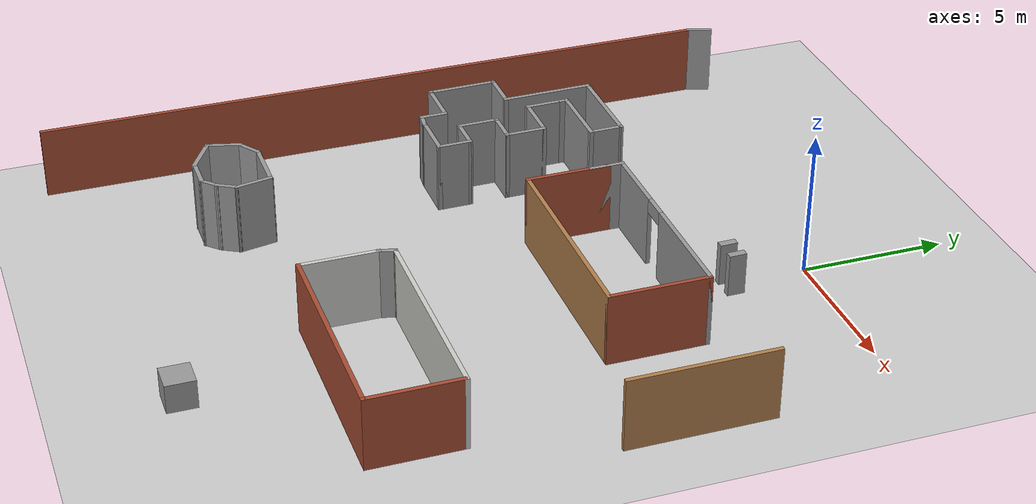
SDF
<sdf version="1.7">
 <world name="default">
  <model name="ground_plane">
   <static>1</static>
   <link name="link">
    <collision name="collision">
     <geometry><plane><normal>0 0 1</normal><size>150 100</size></plane></geometry>
     <surface>
      <contact><collide_bitmask>65535</collide_bitmask></contact>
      <friction><ode><mu>100</mu><mu2>50</mu2></ode></friction>
     </surface>
    </collision>
    <visual name="visual">
     <cast_shadows>0</cast_shadows>
     <geometry><plane><normal>0 0 1</normal><size>150 100</size></plane></geometry>
     <material>
      <script><uri>file://media/materials/scripts/gazebo.material</uri><name>Gazebo/Grey</name></script>
     </material>
    </visual>
   </link>
  </model>
  <model name="unregular_wall">
   <pose>-8.69678 -16.3277 0 0 -0 0</pose>
   <link name="Wall_0">
    <collision name="Wall_0_Collision">
     <geometry><box><size>1.99003 0.15 2.5</size></box></geometry>
     <pose>0 0 1.25 0 -0 0</pose>
    </collision>
    <visual name="Wall_0_Visual">
     <pose>0 0 1.25 0 -0 0</pose>
     <geometry><box><size>1.99003 0.15 2.5</size></box></geometry>
     <material>
      <script><uri>file://media/materials/scripts/gazebo.material</uri><name>Gazebo/Grey</name></script>
      <ambient>1 1 1 1</ambient>
     </material>
     <meta><layer>0</layer></meta>
    </visual>
    <pose>0.359239 0.205461 0 0 -0 -0.005435</pose>
   </link>
   <link name="Wall_1">
    <collision name="Wall_1_Collision">
     <geometry><box><size>1.37286 0.15 2.5</size></box></geometry>
     <pose>0 0 1.25 0 -0 0</pose>
    </collision>
    <visual name="Wall_1_Visual">
     <pose>0 0 1.25 0 -0 0</pose>
     <geometry><box><size>1.37286 0.15 2.5</size></box></geometry>
     <material>
      <script><uri>file://media/materials/scripts/gazebo.material</uri><name>Gazebo/Grey</name></script>
      <ambient>1 1 1 1</ambient>
     </material>
     <meta><layer>0</layer></meta>
    </visual>
    <pose>1.40424 -0.400057 0 0 -0 -1.38159</pose>
   </link>
   <link name="Wall_2">
    <collision name="Wall_2_Collision">
     <geometry><box><size>0.814319 0.15 2.5</size></box></geometry>
     <pose>0 0 1.25 0 -0 0</pose>
    </collision>
    <visual name="Wall_2_Visual">
     <pose>0 0 1.25 0 -0 0</pose>
     <geometry><box><size>0.814319 0.15 2.5</size></box></geometry>
     <material>
      <script><uri>file://media/materials/scripts/gazebo.material</uri><name>Gazebo/Grey</name></script>
      <ambient>1 1 1 1</ambient>
     </material>
     <meta><layer>0</layer></meta>
    </visual>
    <pose>1.34688 -1.29035 0 0 -0 -2.08149</pose>
   </link>
   <link name="Wall_3">
    <collision name="Wall_3_Collision">
     <geometry><box><size>0.75 0.15 2.5</size></box></geometry>
     <pose>0 0 1.25 0 -0 0</pose>
    </collision>
    <visual name="Wall_3_Visual">
     <pose>0 0 1.25 0 -0 0</pose>
     <geometry><box><size>0.75 0.15 2.5</size></box></geometry>
     <material>
      <script><uri>file://media/materials/scripts/gazebo.material</uri><name>Gazebo/Grey</name></script>
      <ambient>1 1 1 1</ambient>
     </material>
     <meta><layer>0</layer></meta>
    </visual>
    <pose>0.972394 -1.79226 0 0 -0 -2.35619</pose>
   </link>
   <link name="Wall_4">
    <collision name="Wall_4_Collision">
     <geometry><box><size>1.25 0.15 2.5</size></box></geometry>
     <pose>0 0 1.25 0 -0 0</pose>
    </collision>
    <visual name="Wall_4_Visual">
     <pose>0 0 1.25 0 -0 0</pose>
     <geometry><box><size>1.25 0.15 2.5</size></box></geometry>
     <material>
      <script><uri>file://media/materials/scripts/gazebo.material</uri><name>Gazebo/Grey</name></script>
      <ambient>1 1 1 1</ambient>
     </material>
     <meta><layer>0</layer></meta>
    </visual>
    <pose>0.210262 -2.0044 0 0 -0 3.14159</pose>
   </link>
   <link name="Wall_5">
    <collision name="Wall_5_Collision">
     <geometry><box><size>1.5 0.15 2.5</size></box></geometry>
     <pose>0 0 1.25 0 -0 0</pose>
    </collision>
    <visual name="Wall_5_Visual">
     <pose>0 0 1.25 0 -0 0</pose>
     <geometry><box><size>1.5 0.15 2.5</size></box></geometry>
     <material>
      <script><uri>file://media/materials/scripts/gazebo.material</uri><name>Gazebo/Grey</name></script>
      <ambient>1 1 1 1</ambient>
     </material>
     <meta><layer>0</layer></meta>
    </visual>
    <pose>-0.924305 -1.6669 0 0 -0 2.61799</pose>
   </link>
   <link name="Wall_6">
    <collision name="Wall_6_Collision">
     <geometry><box><size>1.25 0.15 2.5</size></box></geometry>
     <pose>0 0 1.25 0 -0 0</pose>
    </collision>
    <visual name="Wall_6_Visual">
     <pose>0 0 1.25 0 -0 0</pose>
     <geometry><box><size>1.25 0.15 2.5</size></box></geometry>
     <material>
      <script><uri>file://media/materials/scripts/gazebo.material</uri><name>Gazebo/Grey</name></script>
      <ambient>1 1 1 1</ambient>
     </material>
     <meta><layer>0</layer></meta>
    </visual>
    <pose>-1.36652 -0.798136 0 0 -0 1.309</pose>
   </link>
   <link name="Wall_7">
    <collision name="Wall_7_Collision">
     <geometry><box><size>0.969686 0.15 2.5</size></box></geometry>
     <pose>0 0 1.25 0 -0 0</pose>
    </collision>
    <visual name="Wall_7_Visual">
     <pose>0 0 1.25 0 -0 0</pose>
     <geometry><box><size>0.969686 0.15 2.5</size></box></geometry>
     <material>
      <script><uri>file://media/materials/scripts/gazebo.material</uri><name>Gazebo/Grey</name></script>
      <ambient>1 1 1 1</ambient>
     </material>
     <meta><layer>0</layer></meta>
    </visual>
    <pose>-0.887466 -0.033208 0 0 -0 0.606679</pose>
   </link>
   <static>1</static>
  </model>
  <model name="mountan_like">
   <pose>-9.16752 -7.04341 -1e-06 0.014915 -0.000101 1.5834</pose>
   <link name="Wall_0">
    <collision name="Wall_0_Collision">
     <geometry><box><size>1.75 0.15 2.5</size></box></geometry>
     <pose>0 0 1.25 0 -0 0</pose>
    </collision>
    <visual name="Wall_0_Visual">
     <pose>0 0 1.25 0 -0 0</pose>
     <geometry><box><size>1.75 0.15 2.5</size></box></geometry>
     <material>
      <script><uri>file://media/materials/scripts/gazebo.material</uri><name>Gazebo/Grey</name></script>
      <ambient>1 1 1 1</ambient>
     </material>
     <meta><layer>0</layer></meta>
    </visual>
    <pose>-3.17145 -0.675 0 0 -0 -1.5708</pose>
   </link>
   <link name="Wall_1">
    <collision name="Wall_1_Collision">
     <geometry><box><size>1.25 0.15 2.5</size></box></geometry>
     <pose>0 0 1.25 0 -0 0</pose>
    </collision>
    <visual name="Wall_1_Visual">
     <pose>0 0 1.25 0 -0 0</pose>
     <geometry><box><size>1.25 0.15 2.5</size></box></geometry>
     <material>
      <script><uri>file://media/materials/scripts/gazebo.material</uri><name>Gazebo/Grey</name></script>
      <ambient>1 1 1 1</ambient>
     </material>
     <meta><layer>0</layer></meta>
    </visual>
    <pose>-2.62146 -1.475 0 0 -0 0</pose>
   </link>
   <link name="Wall_10">
    <collision name="Wall_10_Collision">
     <geometry><box><size>1.25 0.15 2.5</size></box></geometry>
     <pose>0 0 1.25 0 -0 0</pose>
    </collision>
    <visual name="Wall_10_Visual">
     <pose>0 0 1.25 0 -0 0</pose>
     <geometry><box><size>1.25 0.15 2.5</size></box></geometry>
     <material>
      <script><uri>file://media/materials/scripts/gazebo.material</uri><name>Gazebo/Grey</name></script>
      <ambient>1 1 1 1</ambient>
     </material>
     <meta><layer>0</layer></meta>
    </visual>
    <pose>2.62854 -2.225 0 0 -0 0</pose>
   </link>
   <link name="Wall_11">
    <collision name="Wall_11_Collision">
     <geometry><box><size>3.25 0.15 2.5</size></box></geometry>
     <pose>0 0 1.25 0 -0 0</pose>
    </collision>
    <visual name="Wall_11_Visual">
     <pose>0 0 1.25 0 -0 0</pose>
     <geometry><box><size>3.25 0.15 2.5</size></box></geometry>
     <material>
      <script><uri>file://media/materials/scripts/gazebo.material</uri><name>Gazebo/Grey</name></script>
      <ambient>1 1 1 1</ambient>
     </material>
     <meta><layer>0</layer></meta>
    </visual>
    <pose>3.17855 -0.675 0 0 -0 1.5708</pose>
   </link>
   <link name="Wall_12">
    <collision name="Wall_12_Collision">
     <geometry><box><size>3.25 0.15 2.5</size></box></geometry>
     <pose>0 0 1.25 0 -0 0</pose>
    </collision>
    <visual name="Wall_12_Visual">
     <pose>0 0 1.25 0 -0 0</pose>
     <geometry><box><size>3.25 0.15 2.5</size></box></geometry>
     <material>
      <script><uri>file://media/materials/scripts/gazebo.material</uri><name>Gazebo/Grey</name></script>
      <ambient>1 1 1 1</ambient>
     </material>
     <meta><layer>0</layer></meta>
    </visual>
    <pose>1.62854 0.875 0 0 -0 3.14159</pose>
   </link>
   <link name="Wall_15">
    <collision name="Wall_15_Collision">
     <geometry><box><size>1.5 0.15 2.5</size></box></geometry>
     <pose>0 0 1.25 0 -0 0</pose>
    </collision>
    <visual name="Wall_15_Visual">
     <pose>0 0 1.25 0 -0 0</pose>
     <geometry><box><size>1.5 0.15 2.5</size></box></geometry>
     <material>
      <script><uri>file://media/materials/scripts/gazebo.material</uri><name>Gazebo/Grey</name></script>
      <ambient>1 1 1 1</ambient>
     </material>
     <meta><layer>0</layer></meta>
    </visual>
    <pose>0.078545 1.55 0 0 -0 1.5708</pose>
   </link>
   <link name="Wall_16">
    <collision name="Wall_16_Collision">
     <geometry><box><size>2.5 0.15 2.5</size></box></geometry>
     <pose>0 0 1.25 0 -0 0</pose>
    </collision>
    <visual name="Wall_16_Visual">
     <pose>0 0 1.25 0 -0 0</pose>
     <geometry><box><size>2.5 0.15 2.5</size></box></geometry>
     <material>
      <script><uri>file://media/materials/scripts/gazebo.material</uri><name>Gazebo/Grey</name></script>
      <ambient>1 1 1 1</ambient>
     </material>
     <meta><layer>0</layer></meta>
    </visual>
    <pose>-1.09645 2.225 0 0 -0 3.14159</pose>
   </link>
   <link name="Wall_17">
    <collision name="Wall_17_Collision">
     <geometry><box><size>1.75 0.15 2.5</size></box></geometry>
     <pose>0 0 1.25 0 -0 0</pose>
    </collision>
    <visual name="Wall_17_Visual">
     <pose>0 0 1.25 0 -0 0</pose>
     <geometry><box><size>1.75 0.15 2.5</size></box></geometry>
     <material>
      <script><uri>file://media/materials/scripts/gazebo.material</uri><name>Gazebo/Grey</name></script>
      <ambient>1 1 1 1</ambient>
     </material>
     <meta><layer>0</layer></meta>
    </visual>
    <pose>-2.27146 1.425 0 0 -0 -1.5708</pose>
   </link>
   <link name="Wall_18">
    <collision name="Wall_18_Collision">
     <geometry><box><size>1 0.15 2.5</size></box></geometry>
     <pose>0 0 1.25 0 -0 0</pose>
    </collision>
    <visual name="Wall_18_Visual">
     <pose>0 0 1.25 0 -0 0</pose>
     <geometry><box><size>1 0.15 2.5</size></box></geometry>
     <material>
      <script><uri>file://media/materials/scripts/gazebo.material</uri><name>Gazebo/Grey</name></script>
      <ambient>1 1 1 1</ambient>
     </material>
     <meta><layer>0</layer></meta>
    </visual>
    <pose>-2.69645 0.625 0 0 -0 3.14159</pose>
   </link>
   <link name="Wall_2">
    <collision name="Wall_2_Collision">
     <geometry><box><size>1.25 0.15 2.5</size></box></geometry>
     <pose>0 0 1.25 0 -0 0</pose>
    </collision>
    <visual name="Wall_2_Visual">
     <pose>0 0 1.25 0 -0 0</pose>
     <geometry><box><size>1.25 0.15 2.5</size></box></geometry>
     <material>
      <script><uri>file://media/materials/scripts/gazebo.material</uri><name>Gazebo/Grey</name></script>
      <ambient>1 1 1 1</ambient>
     </material>
     <meta><layer>0</layer></meta>
    </visual>
    <pose>-2.07145 -0.925 0 0 -0 1.5708</pose>
   </link>
   <link name="Wall_20">
    <collision name="Wall_20_Collision">
     <geometry><box><size>0.652494 0.15 2.5</size></box></geometry>
     <pose>0 0 1.25 0 -0 0</pose>
    </collision>
    <visual name="Wall_20_Visual">
     <pose>0 0 1.25 0 -0 0</pose>
     <geometry><box><size>0.652494 0.15 2.5</size></box></geometry>
     <material>
      <script><uri>file://media/materials/scripts/gazebo.material</uri><name>Gazebo/Grey</name></script>
      <ambient>1 1 1 1</ambient>
     </material>
     <meta><layer>0</layer></meta>
    </visual>
    <pose>-3.14646 0.375 0 0 -0 1.47113</pose>
   </link>
   <link name="Wall_3">
    <collision name="Wall_3_Collision">
     <geometry><box><size>1.5 0.15 2.5</size></box></geometry>
     <pose>0 0 1.25 0 -0 0</pose>
    </collision>
    <visual name="Wall_3_Visual">
     <pose>0 0 1.25 0 -0 0</pose>
     <geometry><box><size>1.5 0.15 2.5</size></box></geometry>
     <material>
      <script><uri>file://media/materials/scripts/gazebo.material</uri><name>Gazebo/Grey</name></script>
      <ambient>1 1 1 1</ambient>
     </material>
     <meta><layer>0</layer></meta>
    </visual>
    <pose>-1.39646 -0.375 0 0 -0 0</pose>
   </link>
   <link name="Wall_4">
    <collision name="Wall_4_Collision">
     <geometry><box><size>1.25 0.15 2.5</size></box></geometry>
     <pose>0 0 1.25 0 -0 0</pose>
    </collision>
    <visual name="Wall_4_Visual">
     <pose>0 0 1.25 0 -0 0</pose>
     <geometry><box><size>1.25 0.15 2.5</size></box></geometry>
     <material>
      <script><uri>file://media/materials/scripts/gazebo.material</uri><name>Gazebo/Grey</name></script>
      <ambient>1 1 1 1</ambient>
     </material>
     <meta><layer>0</layer></meta>
    </visual>
    <pose>-0.721455 -0.925 0 0 -0 -1.5708</pose>
   </link>
   <link name="Wall_5">
    <collision name="Wall_5_Collision">
     <geometry><box><size>1.5 0.15 2.5</size></box></geometry>
     <pose>0 0 1.25 0 -0 0</pose>
    </collision>
    <visual name="Wall_5_Visual">
     <pose>0 0 1.25 0 -0 0</pose>
     <geometry><box><size>1.5 0.15 2.5</size></box></geometry>
     <material>
      <script><uri>file://media/materials/scripts/gazebo.material</uri><name>Gazebo/Grey</name></script>
      <ambient>1 1 1 1</ambient>
     </material>
     <meta><layer>0</layer></meta>
    </visual>
    <pose>-0.046455 -1.475 0 0 -0 0</pose>
   </link>
   <link name="Wall_6">
    <collision name="Wall_6_Collision">
     <geometry><box><size>1.75 0.15 2.5</size></box></geometry>
     <pose>0 0 1.25 0 -0 0</pose>
    </collision>
    <visual name="Wall_6_Visual">
     <pose>0 0 1.25 0 -0 0</pose>
     <geometry><box><size>1.75 0.15 2.5</size></box></geometry>
     <material>
      <script><uri>file://media/materials/scripts/gazebo.material</uri><name>Gazebo/Grey</name></script>
      <ambient>1 1 1 1</ambient>
     </material>
     <meta><layer>0</layer></meta>
    </visual>
    <pose>0.628545 -0.675 0 0 -0 1.5708</pose>
   </link>
   <link name="Wall_7">
    <collision name="Wall_7_Collision">
     <geometry><box><size>1.25 0.15 2.5</size></box></geometry>
     <pose>0 0 1.25 0 -0 0</pose>
    </collision>
    <visual name="Wall_7_Visual">
     <pose>0 0 1.25 0 -0 0</pose>
     <geometry><box><size>1.25 0.15 2.5</size></box></geometry>
     <material>
      <script><uri>file://media/materials/scripts/gazebo.material</uri><name>Gazebo/Grey</name></script>
      <ambient>1 1 1 1</ambient>
     </material>
     <meta><layer>0</layer></meta>
    </visual>
    <pose>1.17854 0.125 0 0 -0 0</pose>
   </link>
   <link name="Wall_8">
    <collision name="Wall_8_Collision">
     <geometry><box><size>0.5 0.15 2.5</size></box></geometry>
     <pose>0 0 1.25 0 -0 0</pose>
    </collision>
    <visual name="Wall_8_Visual">
     <pose>0 0 1.25 0 -0 0</pose>
     <geometry><box><size>0.5 0.15 2.5</size></box></geometry>
     <material>
      <script><uri>file://media/materials/scripts/gazebo.material</uri><name>Gazebo/Grey</name></script>
      <ambient>1 1 1 1</ambient>
     </material>
     <meta><layer>0</layer></meta>
    </visual>
    <pose>1.90355 0.125 0 0 -0 0</pose>
   </link>
   <link name="Wall_9">
    <collision name="Wall_9_Collision">
     <geometry><box><size>2.5 0.15 2.5</size></box></geometry>
     <pose>0 0 1.25 0 -0 0</pose>
    </collision>
    <visual name="Wall_9_Visual">
     <pose>0 0 1.25 0 -0 0</pose>
     <geometry><box><size>2.5 0.15 2.5</size></box></geometry>
     <material>
      <script><uri>file://media/materials/scripts/gazebo.material</uri><name>Gazebo/Grey</name></script>
      <ambient>1 1 1 1</ambient>
     </material>
     <meta><layer>0</layer></meta>
    </visual>
    <pose>2.07855 -1.05 0 0 -0 -1.5708</pose>
   </link>
   <static>1</static>
  </model>
  <model name="unit_box">
   <pose>0.471192 -21 0.499995 0 1e-05 0</pose>
   <link name="link">
    <inertial>
     <mass>1</mass>
     <inertia>
      <ixx>0.166667</ixx>
      <ixy>0</ixy>
      <ixz>0</ixz>
      <iyy>0.166667</iyy>
      <iyz>0</iyz>
      <izz>0.166667</izz>
     </inertia>
    </inertial>
    <collision name="collision"><geometry><box><size>1 1 1</size></box></geometry></collision>
    <visual name="visual">
     <geometry><box><size>1 1 1</size></box></geometry>
     <material>
      <script><name>Gazebo/Grey</name><uri>file://media/materials/scripts/gazebo.material</uri></script>
     </material>
    </visual>
   </link>
  </model>
  <model name="narrowgap">
   <link name="Wall_6">
    <pose>1.3 0.7 0.75 0 -0 1.57</pose>
    <inertial>
     <mass>9.375</mass>
     <inertia>
      <ixx>4.90039</ixx>
      <ixy>0</ixy>
      <ixz>0</ixz>
      <iyy>4.93164</iyy>
      <iyz>0</iyz>
      <izz>0.0664062</izz>
     </inertia>
    </inertial>
    <visual name="Wall_6_Visual">
     <geometry><box><size>0.25 0.6 1.5</size></box></geometry>
     <material>
      <script><uri>file://media/materials/scripts/gazebo.material</uri><name>Gazebo/Grey</name></script>
      <ambient>1 1 1 1</ambient>
      <shader type="pixel"><normal_map>__default__</normal_map></shader>
      <diffuse>0.7 0.7 0.7 1</diffuse>
      <specular>0.01 0.01 0.01 1</specular>
      <emissive>0 0 0 1</emissive>
     </material>
     <meta><layer>0</layer></meta>
    </visual>
    <collision name="Wall_6_Collision">
     <geometry><box><size>0.25 0.6 1.5</size></box></geometry>
     <surface>
      <friction>
       <ode><mu>1</mu><mu2>1</mu2><fdir1>0 0 0</fdir1><slip1>0</slip1><slip2>0</slip2></ode>
       <torsional>
        <coefficient>1</coefficient>
        <patch_radius>0</patch_radius>
        <surface_radius>0</surface_radius>
        <use_patch_radius>1</use_patch_radius>
        <ode><slip>0</slip></ode>
       </torsional>
      </friction>
      <bounce><restitution_coefficient>0</restitution_coefficient><threshold>1e+06</threshold></bounce>
      <contact>
       <collide_without_contact>0</collide_without_contact>
       <collide_without_contact_bitmask>1</collide_without_contact_bitmask>
       <collide_bitmask>1</collide_bitmask>
       <ode>
        <soft_cfm>0</soft_cfm>
        <soft_erp>0.2</soft_erp>
        <kp>1e+13</kp>
        <kd>1</kd>
        <max_vel>0.01</max_vel>
        <min_depth>0</min_depth>
       </ode>
       <bullet>
        <split_impulse>1</split_impulse>
        <split_impulse_penetration_threshold>-0.01</split_impulse_penetration_threshold>
        <soft_cfm>0</soft_cfm>
        <soft_erp>0.2</soft_erp>
        <kp>1e+13</kp>
        <kd>1</kd>
       </bullet>
      </contact>
     </surface>
    </collision>
   </link>
   <link name="Wall_7">
    <pose>1.3 0 0.75 0 -0 1.57</pose>
    <inertial>
     <mass>9.375</mass>
     <inertia>
      <ixx>4.90039</ixx>
      <ixy>0</ixy>
      <ixz>0</ixz>
      <iyy>4.93164</iyy>
      <iyz>0</iyz>
      <izz>0.0664062</izz>
     </inertia>
    </inertial>
    <visual name="Wall_7_Visual">
     <geometry><box><size>0.25 0.6 1.5</size></box></geometry>
     <material>
      <script><uri>file://media/materials/scripts/gazebo.material</uri><name>Gazebo/Grey</name></script>
      <ambient>1 1 1 1</ambient>
      <shader type="pixel"><normal_map>__default__</normal_map></shader>
      <diffuse>0.7 0.7 0.7 1</diffuse>
      <specular>0.01 0.01 0.01 1</specular>
      <emissive>0 0 0 1</emissive>
     </material>
     <meta><layer>0</layer></meta>
    </visual>
    <collision name="Wall_7_Collision">
     <geometry><box><size>0.25 0.6 1.5</size></box></geometry>
     <surface>
      <friction>
       <ode><mu>1</mu><mu2>1</mu2><fdir1>0 0 0</fdir1><slip1>0</slip1><slip2>0</slip2></ode>
       <torsional>
        <coefficient>1</coefficient>
        <patch_radius>0</patch_radius>
        <surface_radius>0</surface_radius>
        <use_patch_radius>1</use_patch_radius>
        <ode><slip>0</slip></ode>
       </torsional>
      </friction>
      <bounce><restitution_coefficient>0</restitution_coefficient><threshold>1e+06</threshold></bounce>
      <contact>
       <collide_without_contact>0</collide_without_contact>
       <collide_without_contact_bitmask>1</collide_without_contact_bitmask>
       <collide_bitmask>1</collide_bitmask>
       <ode>
        <soft_cfm>0</soft_cfm>
        <soft_erp>0.2</soft_erp>
        <kp>1e+13</kp>
        <kd>1</kd>
        <max_vel>0.01</max_vel>
        <min_depth>0</min_depth>
       </ode>
       <bullet>
        <split_impulse>1</split_impulse>
        <split_impulse_penetration_threshold>-0.01</split_impulse_penetration_threshold>
        <soft_cfm>0</soft_cfm>
        <soft_erp>0.2</soft_erp>
        <kp>1e+13</kp>
        <kd>1</kd>
       </bullet>
      </contact>
     </surface>
    </collision>
   </link>
   <static>1</static>
   <pose>0.475672 -4.02864 0 0 -0 1.58428</pose>
  </model>
  <model name="slam_world_test.world">
   <link name="Wall_16">
    <pose>-9.1174 -4.89748 0 0 0 -1.5708</pose>
    <visual name="Wall_16_Visual">
     <pose>0 0 1.25 0 -0 0</pose>
     <geometry><box><size>2.75 0.15 2.5</size></box></geometry>
     <material>
      <script><uri>file://media/materials/scripts/gazebo.material</uri><name>Gazebo/CeilingTiled</name></script>
      <ambient>1 1 1 1</ambient>
      <shader type="pixel"/>
     </material>
     <meta><layer>0</layer></meta>
    </visual>
    <collision name="Wall_16_Collision">
     <pose>0 0 1.25 0 -0 0</pose>
     <geometry><box><size>2.75 0.15 2.5</size></box></geometry>
     <surface>
      <friction>
       <ode><mu>1</mu><mu2>1</mu2><fdir1>0 0 0</fdir1><slip1>0</slip1><slip2>0</slip2></ode>
       <torsional>
        <coefficient>1</coefficient>
        <patch_radius>0</patch_radius>
        <surface_radius>0</surface_radius>
        <use_patch_radius>1</use_patch_radius>
        <ode><slip>0</slip></ode>
       </torsional>
      </friction>
      <bounce><restitution_coefficient>0</restitution_coefficient><threshold>1e+06</threshold></bounce>
      <contact>
       <collide_without_contact>0</collide_without_contact>
       <collide_without_contact_bitmask>1</collide_without_contact_bitmask>
       <collide_bitmask>1</collide_bitmask>
       <ode>
        <soft_cfm>0</soft_cfm>
        <soft_erp>0.2</soft_erp>
        <kp>1e+13</kp>
        <kd>1</kd>
        <max_vel>0.01</max_vel>
        <min_depth>0</min_depth>
       </ode>
       <bullet>
        <split_impulse>1</split_impulse>
        <split_impulse_penetration_threshold>-0.01</split_impulse_penetration_threshold>
        <soft_cfm>0</soft_cfm>
        <soft_erp>0.2</soft_erp>
        <kp>1e+13</kp>
        <kd>1</kd>
       </bullet>
      </contact>
     </surface>
    </collision>
   </link>
   <link name="Wall_17">
    <pose>-5.4424 -6.19749 0 0 -0 0</pose>
    <visual name="Wall_17_Visual">
     <pose>0 0 1.25 0 -0 0</pose>
     <geometry><box><size>7.5 0.15 2.5</size></box></geometry>
     <material>
      <script><uri>file://media/materials/scripts/gazebo.material</uri><name>Gazebo/Bricks</name></script>
      <ambient>1 1 1 1</ambient>
      <shader type="pixel"/>
     </material>
     <meta><layer>0</layer></meta>
    </visual>
    <collision name="Wall_17_Collision">
     <pose>0 0 1.25 0 -0 0</pose>
     <geometry><box><size>7.5 0.15 2.5</size></box></geometry>
     <surface>
      <friction>
       <ode><mu>1</mu><mu2>1</mu2><fdir1>0 0 0</fdir1><slip1>0</slip1><slip2>0</slip2></ode>
       <torsional>
        <coefficient>1</coefficient>
        <patch_radius>0</patch_radius>
        <surface_radius>0</surface_radius>
        <use_patch_radius>1</use_patch_radius>
        <ode><slip>0</slip></ode>
       </torsional>
      </friction>
      <bounce><restitution_coefficient>0</restitution_coefficient><threshold>1e+06</threshold></bounce>
      <contact>
       <collide_without_contact>0</collide_without_contact>
       <collide_without_contact_bitmask>1</collide_without_contact_bitmask>
       <collide_bitmask>1</collide_bitmask>
       <ode>
        <soft_cfm>0</soft_cfm>
        <soft_erp>0.2</soft_erp>
        <kp>1e+13</kp>
        <kd>1</kd>
        <max_vel>0.01</max_vel>
        <min_depth>0</min_depth>
       </ode>
       <bullet>
        <split_impulse>1</split_impulse>
        <split_impulse_penetration_threshold>-0.01</split_impulse_penetration_threshold>
        <soft_cfm>0</soft_cfm>
        <soft_erp>0.2</soft_erp>
        <kp>1e+13</kp>
        <kd>1</kd>
       </bullet>
      </contact>
     </surface>
    </collision>
   </link>
   <link name="Wall_18">
    <pose>-1.7674 -4.64748 0 0 -0 1.5708</pose>
    <visual name="Wall_18_Visual">
     <pose>0 0 1.25 0 -0 0</pose>
     <geometry><box><size>3.25 0.15 2.5</size></box></geometry>
     <material>
      <script><uri>file://media/materials/scripts/gazebo.material</uri><name>Gazebo/Bricks</name></script>
      <ambient>1 1 1 1</ambient>
      <shader type="pixel"/>
     </material>
     <meta><layer>0</layer></meta>
    </visual>
    <collision name="Wall_18_Collision">
     <pose>0 0 1.25 0 -0 0</pose>
     <geometry><box><size>3.25 0.15 2.5</size></box></geometry>
     <surface>
      <friction>
       <ode><mu>1</mu><mu2>1</mu2><fdir1>0 0 0</fdir1><slip1>0</slip1><slip2>0</slip2></ode>
       <torsional>
        <coefficient>1</coefficient>
        <patch_radius>0</patch_radius>
        <surface_radius>0</surface_radius>
        <use_patch_radius>1</use_patch_radius>
        <ode><slip>0</slip></ode>
       </torsional>
      </friction>
      <bounce><restitution_coefficient>0</restitution_coefficient><threshold>1e+06</threshold></bounce>
      <contact>
       <collide_without_contact>0</collide_without_contact>
       <collide_without_contact_bitmask>1</collide_without_contact_bitmask>
       <collide_bitmask>1</collide_bitmask>
       <ode>
        <soft_cfm>0</soft_cfm>
        <soft_erp>0.2</soft_erp>
        <kp>1e+13</kp>
        <kd>1</kd>
        <max_vel>0.01</max_vel>
        <min_depth>0</min_depth>
       </ode>
       <bullet>
        <split_impulse>1</split_impulse>
        <split_impulse_penetration_threshold>-0.01</split_impulse_penetration_threshold>
        <soft_cfm>0</soft_cfm>
        <soft_erp>0.2</soft_erp>
        <kp>1e+13</kp>
        <kd>1</kd>
       </bullet>
      </contact>
     </surface>
    </collision>
   </link>
   <link name="Wall_19">
    <pose>-5.3174 -3.09749 0 0 -0 3.14159</pose>
    <visual name="Wall_19_Visual">
     <pose>0 0 1.25 0 -0 0</pose>
     <geometry><box><size>7.25 0.15 2.5</size></box></geometry>
     <material>
      <script><uri>file://media/materials/scripts/gazebo.material</uri><name>Gazebo/CeilingTiled</name></script>
      <ambient>1 1 1 1</ambient>
      <shader type="pixel"/>
     </material>
     <meta><layer>0</layer></meta>
    </visual>
    <collision name="Wall_19_Collision">
     <pose>0 0 1.25 0 -0 0</pose>
     <geometry><box><size>7.25 0.15 2.5</size></box></geometry>
     <surface>
      <friction>
       <ode><mu>1</mu><mu2>1</mu2><fdir1>0 0 0</fdir1><slip1>0</slip1><slip2>0</slip2></ode>
       <torsional>
        <coefficient>1</coefficient>
        <patch_radius>0</patch_radius>
        <surface_radius>0</surface_radius>
        <use_patch_radius>1</use_patch_radius>
        <ode><slip>0</slip></ode>
       </torsional>
      </friction>
      <bounce><restitution_coefficient>0</restitution_coefficient><threshold>1e+06</threshold></bounce>
      <contact>
       <collide_without_contact>0</collide_without_contact>
       <collide_without_contact_bitmask>1</collide_without_contact_bitmask>
       <collide_bitmask>1</collide_bitmask>
       <ode>
        <soft_cfm>0</soft_cfm>
        <soft_erp>0.2</soft_erp>
        <kp>1e+13</kp>
        <kd>1</kd>
        <max_vel>0.01</max_vel>
        <min_depth>0</min_depth>
       </ode>
       <bullet>
        <split_impulse>1</split_impulse>
        <split_impulse_penetration_threshold>-0.01</split_impulse_penetration_threshold>
        <soft_cfm>0</soft_cfm>
        <soft_erp>0.2</soft_erp>
        <kp>1e+13</kp>
        <kd>1</kd>
       </bullet>
      </contact>
     </surface>
    </collision>
   </link>
   <link name="Wall_20">
    <pose>-8.9174 -3.09749 0 0 -0 3.14159</pose>
    <visual name="Wall_20_Visual">
     <pose>0 0 1.25 0 -0 0</pose>
     <geometry><box><size>0.25 0.15 2.5</size></box></geometry>
     <material>
      <script><uri>file://media/materials/scripts/gazebo.material</uri><name>Gazebo/Grey</name></script>
      <ambient>1 1 1 1</ambient>
      <shader type="pixel"/>
     </material>
     <meta><layer>0</layer></meta>
    </visual>
    <collision name="Wall_20_Collision">
     <pose>0 0 1.25 0 -0 0</pose>
     <geometry><box><size>0.25 0.15 2.5</size></box></geometry>
     <surface>
      <friction>
       <ode><mu>1</mu><mu2>1</mu2><fdir1>0 0 0</fdir1><slip1>0</slip1><slip2>0</slip2></ode>
       <torsional>
        <coefficient>1</coefficient>
        <patch_radius>0</patch_radius>
        <surface_radius>0</surface_radius>
        <use_patch_radius>1</use_patch_radius>
        <ode><slip>0</slip></ode>
       </torsional>
      </friction>
      <bounce><restitution_coefficient>0</restitution_coefficient><threshold>1e+06</threshold></bounce>
      <contact>
       <collide_without_contact>0</collide_without_contact>
       <collide_without_contact_bitmask>1</collide_without_contact_bitmask>
       <collide_bitmask>1</collide_bitmask>
       <ode>
        <soft_cfm>0</soft_cfm>
        <soft_erp>0.2</soft_erp>
        <kp>1e+13</kp>
        <kd>1</kd>
        <max_vel>0.01</max_vel>
        <min_depth>0</min_depth>
       </ode>
       <bullet>
        <split_impulse>1</split_impulse>
        <split_impulse_penetration_threshold>-0.01</split_impulse_penetration_threshold>
        <soft_cfm>0</soft_cfm>
        <soft_erp>0.2</soft_erp>
        <kp>1e+13</kp>
        <kd>1</kd>
       </bullet>
      </contact>
     </surface>
    </collision>
   </link>
   <link name="Wall_21">
    <pose>-8.9674 -3.09749 0 0 -0 0</pose>
    <visual name="Wall_21_Visual">
     <pose>0 0 1.25 0 -0 0</pose>
     <geometry><box><size>0.15 0.15 2.5</size></box></geometry>
     <material>
      <script><uri>file://media/materials/scripts/gazebo.material</uri><name>Gazebo/Grey</name></script>
      <ambient>1 1 1 1</ambient>
      <shader type="pixel"/>
     </material>
     <meta><layer>0</layer></meta>
    </visual>
    <collision name="Wall_21_Collision">
     <pose>0 0 1.25 0 -0 0</pose>
     <geometry><box><size>0.15 0.15 2.5</size></box></geometry>
     <surface>
      <friction>
       <ode><mu>1</mu><mu2>1</mu2><fdir1>0 0 0</fdir1><slip1>0</slip1><slip2>0</slip2></ode>
       <torsional>
        <coefficient>1</coefficient>
        <patch_radius>0</patch_radius>
        <surface_radius>0</surface_radius>
        <use_patch_radius>1</use_patch_radius>
        <ode><slip>0</slip></ode>
       </torsional>
      </friction>
      <bounce><restitution_coefficient>0</restitution_coefficient><threshold>1e+06</threshold></bounce>
      <contact>
       <collide_without_contact>0</collide_without_contact>
       <collide_without_contact_bitmask>1</collide_without_contact_bitmask>
       <collide_bitmask>1</collide_bitmask>
       <ode>
        <soft_cfm>0</soft_cfm>
        <soft_erp>0.2</soft_erp>
        <kp>1e+13</kp>
        <kd>1</kd>
        <max_vel>0.01</max_vel>
        <min_depth>0</min_depth>
       </ode>
       <bullet>
        <split_impulse>1</split_impulse>
        <split_impulse_penetration_threshold>-0.01</split_impulse_penetration_threshold>
        <soft_cfm>0</soft_cfm>
        <soft_erp>0.2</soft_erp>
        <kp>1e+13</kp>
        <kd>1</kd>
       </bullet>
      </contact>
     </surface>
    </collision>
   </link>
   <link name="Wall_22">
    <pose>-9.0424 -3.34749 0 0 0 -1.86225</pose>
    <visual name="Wall_22_Visual">
     <pose>0 0 1.25 0 -0 0</pose>
     <geometry><box><size>0.672015 0.15 2.5</size></box></geometry>
     <material>
      <script><uri>file://media/materials/scripts/gazebo.material</uri><name>Gazebo/Grey</name></script>
      <ambient>1 1 1 1</ambient>
      <shader type="pixel"/>
     </material>
     <meta><layer>0</layer></meta>
    </visual>
    <collision name="Wall_22_Collision">
     <pose>0 0 1.25 0 -0 0</pose>
     <geometry><box><size>0.672015 0.15 2.5</size></box></geometry>
     <surface>
      <friction>
       <ode><mu>1</mu><mu2>1</mu2><fdir1>0 0 0</fdir1><slip1>0</slip1><slip2>0</slip2></ode>
       <torsional>
        <coefficient>1</coefficient>
        <patch_radius>0</patch_radius>
        <surface_radius>0</surface_radius>
        <use_patch_radius>1</use_patch_radius>
        <ode><slip>0</slip></ode>
       </torsional>
      </friction>
      <bounce><restitution_coefficient>0</restitution_coefficient><threshold>1e+06</threshold></bounce>
      <contact>
       <collide_without_contact>0</collide_without_contact>
       <collide_without_contact_bitmask>1</collide_without_contact_bitmask>
       <collide_bitmask>1</collide_bitmask>
       <ode>
        <soft_cfm>0</soft_cfm>
        <soft_erp>0.2</soft_erp>
        <kp>1e+13</kp>
        <kd>1</kd>
        <max_vel>0.01</max_vel>
        <min_depth>0</min_depth>
       </ode>
       <bullet>
        <split_impulse>1</split_impulse>
        <split_impulse_penetration_threshold>-0.01</split_impulse_penetration_threshold>
        <soft_cfm>0</soft_cfm>
        <soft_erp>0.2</soft_erp>
        <kp>1e+13</kp>
        <kd>1</kd>
       </bullet>
      </contact>
     </surface>
    </collision>
   </link>
   <link name="Wall_3">
    <pose>-0.194103 3.64295 0 0 0 -1.5708</pose>
    <visual name="Wall_3_Visual">
     <pose>0 0 1.25 0 -0 0</pose>
     <geometry><box><size>5 0.15 2.5</size></box></geometry>
     <material>
      <script><uri>file://media/materials/scripts/gazebo.material</uri><name>Gazebo/Wood</name></script>
      <ambient>1 1 1 1</ambient>
      <shader type="pixel"/>
     </material>
     <meta><layer>0</layer></meta>
    </visual>
    <collision name="Wall_3_Collision">
     <pose>0 0 1.25 0 -0 0</pose>
     <geometry><box><size>5 0.15 2.5</size></box></geometry>
     <surface>
      <friction>
       <ode><mu>1</mu><mu2>1</mu2><fdir1>0 0 0</fdir1><slip1>0</slip1><slip2>0</slip2></ode>
       <torsional>
        <coefficient>1</coefficient>
        <patch_radius>0</patch_radius>
        <surface_radius>0</surface_radius>
        <use_patch_radius>1</use_patch_radius>
        <ode><slip>0</slip></ode>
       </torsional>
      </friction>
      <bounce><restitution_coefficient>0</restitution_coefficient><threshold>1e+06</threshold></bounce>
      <contact>
       <collide_without_contact>0</collide_without_contact>
       <collide_without_contact_bitmask>1</collide_without_contact_bitmask>
       <collide_bitmask>1</collide_bitmask>
       <ode>
        <soft_cfm>0</soft_cfm>
        <soft_erp>0.2</soft_erp>
        <kp>1e+13</kp>
        <kd>1</kd>
        <max_vel>0.01</max_vel>
        <min_depth>0</min_depth>
       </ode>
       <bullet>
        <split_impulse>1</split_impulse>
        <split_impulse_penetration_threshold>-0.01</split_impulse_penetration_threshold>
        <soft_cfm>0</soft_cfm>
        <soft_erp>0.2</soft_erp>
        <kp>1e+13</kp>
        <kd>1</kd>
       </bullet>
      </contact>
     </surface>
    </collision>
   </link>
   <link name="Wall_30">
    <pose>-20.1651 -0.384933 0 0 0 -1.5708</pose>
    <visual name="Wall_30_Visual">
     <pose>0 0 1.25 0 -0 0</pose>
     <geometry><box><size>24.25 0.15 2.5</size></box></geometry>
     <material>
      <script><uri>file://media/materials/scripts/gazebo.material</uri><name>Gazebo/Bricks</name></script>
      <ambient>1 1 1 1</ambient>
      <shader type="pixel"/>
     </material>
     <meta><layer>0</layer></meta>
    </visual>
    <collision name="Wall_30_Collision">
     <pose>0 0 1.25 0 -0 0</pose>
     <geometry><box><size>24.25 0.15 2.5</size></box></geometry>
     <surface>
      <friction>
       <ode><mu>1</mu><mu2>1</mu2><fdir1>0 0 0</fdir1><slip1>0</slip1><slip2>0</slip2></ode>
       <torsional>
        <coefficient>1</coefficient>
        <patch_radius>0</patch_radius>
        <surface_radius>0</surface_radius>
        <use_patch_radius>1</use_patch_radius>
        <ode><slip>0</slip></ode>
       </torsional>
      </friction>
      <bounce><restitution_coefficient>0</restitution_coefficient><threshold>1e+06</threshold></bounce>
      <contact>
       <collide_without_contact>0</collide_without_contact>
       <collide_without_contact_bitmask>1</collide_without_contact_bitmask>
       <collide_bitmask>1</collide_bitmask>
       <ode>
        <soft_cfm>0</soft_cfm>
        <soft_erp>0.2</soft_erp>
        <kp>1e+13</kp>
        <kd>1</kd>
        <max_vel>0.01</max_vel>
        <min_depth>0</min_depth>
       </ode>
       <bullet>
        <split_impulse>1</split_impulse>
        <split_impulse_penetration_threshold>-0.01</split_impulse_penetration_threshold>
        <soft_cfm>0</soft_cfm>
        <soft_erp>0.2</soft_erp>
        <kp>1e+13</kp>
        <kd>1</kd>
       </bullet>
      </contact>
     </surface>
    </collision>
   </link>
   <link name="Wall_37">
    <pose>-20.0401 12.0401 0 0 -0 1.24905</pose>
    <visual name="Wall_37_Visual">
     <pose>0 0 1.25 0 -0 0</pose>
     <geometry><box><size>0.940569 0.15 2.5</size></box></geometry>
     <material>
      <script><uri>file://media/materials/scripts/gazebo.material</uri><name>Gazebo/Grey</name></script>
      <ambient>1 1 1 1</ambient>
      <shader type="pixel"/>
     </material>
     <meta><layer>0</layer></meta>
    </visual>
    <collision name="Wall_37_Collision">
     <pose>0 0 1.25 0 -0 0</pose>
     <geometry><box><size>0.940569 0.15 2.5</size></box></geometry>
     <surface>
      <friction>
       <ode><mu>1</mu><mu2>1</mu2><fdir1>0 0 0</fdir1><slip1>0</slip1><slip2>0</slip2></ode>
       <torsional>
        <coefficient>1</coefficient>
        <patch_radius>0</patch_radius>
        <surface_radius>0</surface_radius>
        <use_patch_radius>1</use_patch_radius>
        <ode><slip>0</slip></ode>
       </torsional>
      </friction>
      <bounce><restitution_coefficient>0</restitution_coefficient><threshold>1e+06</threshold></bounce>
      <contact>
       <collide_without_contact>0</collide_without_contact>
       <collide_without_contact_bitmask>1</collide_without_contact_bitmask>
       <collide_bitmask>1</collide_bitmask>
       <ode>
        <soft_cfm>0</soft_cfm>
        <soft_erp>0.2</soft_erp>
        <kp>1e+13</kp>
        <kd>1</kd>
        <max_vel>0.01</max_vel>
        <min_depth>0</min_depth>
       </ode>
       <bullet>
        <split_impulse>1</split_impulse>
        <split_impulse_penetration_threshold>-0.01</split_impulse_penetration_threshold>
        <soft_cfm>0</soft_cfm>
        <soft_erp>0.2</soft_erp>
        <kp>1e+13</kp>
        <kd>1</kd>
       </bullet>
      </contact>
     </surface>
    </collision>
   </link>
   <link name="Wall_5">
    <pose>-11.7266 3.72123 0 0 0 -1.5708</pose>
    <visual name="Wall_5_Visual">
     <pose>0 0 1.25 0 -0 0</pose>
     <geometry><box><size>3 0.15 2.5</size></box></geometry>
     <material>
      <script><uri>file://media/materials/scripts/gazebo.material</uri><name>Gazebo/Bricks</name></script>
      <ambient>1 1 1 1</ambient>
      <shader type="pixel"/>
     </material>
     <meta><layer>0</layer></meta>
    </visual>
    <collision name="Wall_5_Collision">
     <pose>0 0 1.25 0 -0 0</pose>
     <geometry><box><size>3 0.15 2.5</size></box></geometry>
     <surface>
      <friction>
       <ode><mu>1</mu><mu2>1</mu2><fdir1>0 0 0</fdir1><slip1>0</slip1><slip2>0</slip2></ode>
       <torsional>
        <coefficient>1</coefficient>
        <patch_radius>0</patch_radius>
        <surface_radius>0</surface_radius>
        <use_patch_radius>1</use_patch_radius>
        <ode><slip>0</slip></ode>
       </torsional>
      </friction>
      <bounce><restitution_coefficient>0</restitution_coefficient><threshold>1e+06</threshold></bounce>
      <contact>
       <collide_without_contact>0</collide_without_contact>
       <collide_without_contact_bitmask>1</collide_without_contact_bitmask>
       <collide_bitmask>1</collide_bitmask>
       <ode>
        <soft_cfm>0</soft_cfm>
        <soft_erp>0.2</soft_erp>
        <kp>1e+13</kp>
        <kd>1</kd>
        <max_vel>0.01</max_vel>
        <min_depth>0</min_depth>
       </ode>
       <bullet>
        <split_impulse>1</split_impulse>
        <split_impulse_penetration_threshold>-0.01</split_impulse_penetration_threshold>
        <soft_cfm>0</soft_cfm>
        <soft_erp>0.2</soft_erp>
        <kp>1e+13</kp>
        <kd>1</kd>
       </bullet>
      </contact>
     </surface>
    </collision>
   </link>
   <link name="Wall_6">
    <pose>-8.0516 2.29623 0 0 -0 0</pose>
    <visual name="Wall_6_Visual">
     <pose>0 0 1.25 0 -0 0</pose>
     <geometry><box><size>7.5 0.15 2.5</size></box></geometry>
     <material>
      <script><uri>file://media/materials/scripts/gazebo.material</uri><name>Gazebo/Wood</name></script>
      <ambient>1 1 1 1</ambient>
      <shader type="pixel"/>
     </material>
     <meta><layer>0</layer></meta>
    </visual>
    <collision name="Wall_6_Collision">
     <pose>0 0 1.25 0 -0 0</pose>
     <geometry><box><size>7.5 0.15 2.5</size></box></geometry>
     <surface>
      <friction>
       <ode><mu>1</mu><mu2>1</mu2><fdir1>0 0 0</fdir1><slip1>0</slip1><slip2>0</slip2></ode>
       <torsional>
        <coefficient>1</coefficient>
        <patch_radius>0</patch_radius>
        <surface_radius>0</surface_radius>
        <use_patch_radius>1</use_patch_radius>
        <ode><slip>0</slip></ode>
       </torsional>
      </friction>
      <bounce><restitution_coefficient>0</restitution_coefficient><threshold>1e+06</threshold></bounce>
      <contact>
       <collide_without_contact>0</collide_without_contact>
       <collide_without_contact_bitmask>1</collide_without_contact_bitmask>
       <collide_bitmask>1</collide_bitmask>
       <ode>
        <soft_cfm>0</soft_cfm>
        <soft_erp>0.2</soft_erp>
        <kp>1e+13</kp>
        <kd>1</kd>
        <max_vel>0.01</max_vel>
        <min_depth>0</min_depth>
       </ode>
       <bullet>
        <split_impulse>1</split_impulse>
        <split_impulse_penetration_threshold>-0.01</split_impulse_penetration_threshold>
        <soft_cfm>0</soft_cfm>
        <soft_erp>0.2</soft_erp>
        <kp>1e+13</kp>
        <kd>1</kd>
       </bullet>
      </contact>
     </surface>
    </collision>
   </link>
   <link name="Wall_7">
    <pose>-4.3766 3.97123 0 0 -0 1.5708</pose>
    <visual name="Wall_7_Visual">
     <pose>0 0 1.25 0 -0 0</pose>
     <geometry><box><size>3.5 0.15 2.5</size></box></geometry>
     <material>
      <script><uri>file://media/materials/scripts/gazebo.material</uri><name>Gazebo/Bricks</name></script>
      <ambient>1 1 1 1</ambient>
      <shader type="pixel"/>
     </material>
     <meta><layer>0</layer></meta>
    </visual>
    <collision name="Wall_7_Collision">
     <pose>0 0 1.25 0 -0 0</pose>
     <geometry><box><size>3.5 0.15 2.5</size></box></geometry>
     <surface>
      <friction>
       <ode><mu>1</mu><mu2>1</mu2><fdir1>0 0 0</fdir1><slip1>0</slip1><slip2>0</slip2></ode>
       <torsional>
        <coefficient>1</coefficient>
        <patch_radius>0</patch_radius>
        <surface_radius>0</surface_radius>
        <use_patch_radius>1</use_patch_radius>
        <ode><slip>0</slip></ode>
       </torsional>
      </friction>
      <bounce><restitution_coefficient>0</restitution_coefficient><threshold>1e+06</threshold></bounce>
      <contact>
       <collide_without_contact>0</collide_without_contact>
       <collide_without_contact_bitmask>1</collide_without_contact_bitmask>
       <collide_bitmask>1</collide_bitmask>
       <ode>
        <soft_cfm>0</soft_cfm>
        <soft_erp>0.2</soft_erp>
        <kp>1e+13</kp>
        <kd>1</kd>
        <max_vel>0.01</max_vel>
        <min_depth>0</min_depth>
       </ode>
       <bullet>
        <split_impulse>1</split_impulse>
        <split_impulse_penetration_threshold>-0.01</split_impulse_penetration_threshold>
        <soft_cfm>0</soft_cfm>
        <soft_erp>0.2</soft_erp>
        <kp>1e+13</kp>
        <kd>1</kd>
       </bullet>
      </contact>
     </surface>
    </collision>
   </link>
   <link name="Wall_8">
    <pose>-8.0516 5.64623 0 0 -0 3.14159</pose>
    <visual name="Wall_8_Visual_0">
     <pose>-1.72345 0 1.25 0 -0 0</pose>
     <geometry><box><size>4.05309 0.15 2.5</size></box></geometry>
     <material>
      <script><uri>file://media/materials/scripts/gazebo.material</uri><name>Gazebo/Grey</name></script>
      <ambient>1 1 1 1</ambient>
      <shader type="pixel"/>
     </material>
     <meta><layer>0</layer></meta>
    </visual>
    <visual name="Wall_8_Visual_2">
     <pose>0.753095 0 2.25 0 -0 0</pose>
     <geometry><box><size>0.9 0.15 0.5</size></box></geometry>
     <material>
      <script><uri>file://media/materials/scripts/gazebo.material</uri><name>Gazebo/Grey</name></script>
      <ambient>1 1 1 1</ambient>
      <shader type="pixel"/>
     </material>
     <meta><layer>0</layer></meta>
    </visual>
    <visual name="Wall_8_Visual_1">
     <pose>2.47655 0 1.25 0 -0 0</pose>
     <geometry><box><size>2.54691 0.15 2.5</size></box></geometry>
     <material>
      <script><uri>file://media/materials/scripts/gazebo.material</uri><name>Gazebo/Grey</name></script>
      <ambient>1 1 1 1</ambient>
      <shader type="pixel"/>
     </material>
     <meta><layer>0</layer></meta>
    </visual>
    <collision name="Wall_8_Collision_0">
     <pose>-1.72345 0 1.25 0 -0 0</pose>
     <geometry><box><size>4.05309 0.15 2.5</size></box></geometry>
     <surface>
      <friction>
       <ode><mu>1</mu><mu2>1</mu2><fdir1>0 0 0</fdir1><slip1>0</slip1><slip2>0</slip2></ode>
       <torsional>
        <coefficient>1</coefficient>
        <patch_radius>0</patch_radius>
        <surface_radius>0</surface_radius>
        <use_patch_radius>1</use_patch_radius>
        <ode><slip>0</slip></ode>
       </torsional>
      </friction>
      <bounce><restitution_coefficient>0</restitution_coefficient><threshold>1e+06</threshold></bounce>
      <contact>
       <collide_without_contact>0</collide_without_contact>
       <collide_without_contact_bitmask>1</collide_without_contact_bitmask>
       <collide_bitmask>1</collide_bitmask>
       <ode>
        <soft_cfm>0</soft_cfm>
        <soft_erp>0.2</soft_erp>
        <kp>1e+13</kp>
        <kd>1</kd>
        <max_vel>0.01</max_vel>
        <min_depth>0</min_depth>
       </ode>
       <bullet>
        <split_impulse>1</split_impulse>
        <split_impulse_penetration_threshold>-0.01</split_impulse_penetration_threshold>
        <soft_cfm>0</soft_cfm>
        <soft_erp>0.2</soft_erp>
        <kp>1e+13</kp>
        <kd>1</kd>
       </bullet>
      </contact>
     </surface>
    </collision>
    <collision name="Wall_8_Collision_2">
     <pose>0.753095 0 2.25 0 -0 0</pose>
     <geometry><box><size>0.9 0.15 0.5</size></box></geometry>
     <surface>
      <friction>
       <ode><mu>1</mu><mu2>1</mu2><fdir1>0 0 0</fdir1><slip1>0</slip1><slip2>0</slip2></ode>
       <torsional>
        <coefficient>1</coefficient>
        <patch_radius>0</patch_radius>
        <surface_radius>0</surface_radius>
        <use_patch_radius>1</use_patch_radius>
        <ode><slip>0</slip></ode>
       </torsional>
      </friction>
      <bounce><restitution_coefficient>0</restitution_coefficient><threshold>1e+06</threshold></bounce>
      <contact>
       <collide_without_contact>0</collide_without_contact>
       <collide_without_contact_bitmask>1</collide_without_contact_bitmask>
       <collide_bitmask>1</collide_bitmask>
       <ode>
        <soft_cfm>0</soft_cfm>
        <soft_erp>0.2</soft_erp>
        <kp>1e+13</kp>
        <kd>1</kd>
        <max_vel>0.01</max_vel>
        <min_depth>0</min_depth>
       </ode>
       <bullet>
        <split_impulse>1</split_impulse>
        <split_impulse_penetration_threshold>-0.01</split_impulse_penetration_threshold>
        <soft_cfm>0</soft_cfm>
        <soft_erp>0.2</soft_erp>
        <kp>1e+13</kp>
        <kd>1</kd>
       </bullet>
      </contact>
     </surface>
    </collision>
    <collision name="Wall_8_Collision_1">
     <pose>2.47655 0 1.25 0 -0 0</pose>
     <geometry><box><size>2.54691 0.15 2.5</size></box></geometry>
     <surface>
      <friction>
       <ode><mu>1</mu><mu2>1</mu2><fdir1>0 0 0</fdir1><slip1>0</slip1><slip2>0</slip2></ode>
       <torsional>
        <coefficient>1</coefficient>
        <patch_radius>0</patch_radius>
        <surface_radius>0</surface_radius>
        <use_patch_radius>1</use_patch_radius>
        <ode><slip>0</slip></ode>
       </torsional>
      </friction>
      <bounce><restitution_coefficient>0</restitution_coefficient><threshold>1e+06</threshold></bounce>
      <contact>
       <collide_without_contact>0</collide_without_contact>
       <collide_without_contact_bitmask>1</collide_without_contact_bitmask>
       <collide_bitmask>1</collide_bitmask>
       <ode>
        <soft_cfm>0</soft_cfm>
        <soft_erp>0.2</soft_erp>
        <kp>1e+13</kp>
        <kd>1</kd>
        <max_vel>0.01</max_vel>
        <min_depth>0</min_depth>
       </ode>
       <bullet>
        <split_impulse>1</split_impulse>
        <split_impulse_penetration_threshold>-0.01</split_impulse_penetration_threshold>
        <soft_cfm>0</soft_cfm>
        <soft_erp>0.2</soft_erp>
        <kp>1e+13</kp>
        <kd>1</kd>
       </bullet>
      </contact>
     </surface>
    </collision>
   </link>
   <link name="Wall_9">
    <pose>-11.7266 5.09623 0 0 0 -1.5708</pose>
    <visual name="Wall_9_Visual">
     <pose>0 0 1.25 0 -0 0</pose>
     <geometry><box><size>1.25 0.15 2.5</size></box></geometry>
     <material>
      <script><uri>file://media/materials/scripts/gazebo.material</uri><name>Gazebo/Grey</name></script>
      <ambient>1 1 1 1</ambient>
      <shader type="pixel"/>
     </material>
     <meta><layer>0</layer></meta>
    </visual>
    <collision name="Wall_9_Collision">
     <pose>0 0 1.25 0 -0 0</pose>
     <geometry><box><size>1.25 0.15 2.5</size></box></geometry>
     <surface>
      <friction>
       <ode><mu>1</mu><mu2>1</mu2><fdir1>0 0 0</fdir1><slip1>0</slip1><slip2>0</slip2></ode>
       <torsional>
        <coefficient>1</coefficient>
        <patch_radius>0</patch_radius>
        <surface_radius>0</surface_radius>
        <use_patch_radius>1</use_patch_radius>
        <ode><slip>0</slip></ode>
       </torsional>
      </friction>
      <bounce><restitution_coefficient>0</restitution_coefficient><threshold>1e+06</threshold></bounce>
      <contact>
       <collide_without_contact>0</collide_without_contact>
       <collide_without_contact_bitmask>1</collide_without_contact_bitmask>
       <collide_bitmask>1</collide_bitmask>
       <ode>
        <soft_cfm>0</soft_cfm>
        <soft_erp>0.2</soft_erp>
        <kp>1e+13</kp>
        <kd>1</kd>
        <max_vel>0.01</max_vel>
        <min_depth>0</min_depth>
       </ode>
       <bullet>
        <split_impulse>1</split_impulse>
        <split_impulse_penetration_threshold>-0.01</split_impulse_penetration_threshold>
        <soft_cfm>0</soft_cfm>
        <soft_erp>0.2</soft_erp>
        <kp>1e+13</kp>
        <kd>1</kd>
       </bullet>
      </contact>
     </surface>
    </collision>
   </link>
   <static>1</static>
   <pose>7.19162 -10.3857 0 0 -0 0</pose>
  </model>
 </world>
</sdf>
